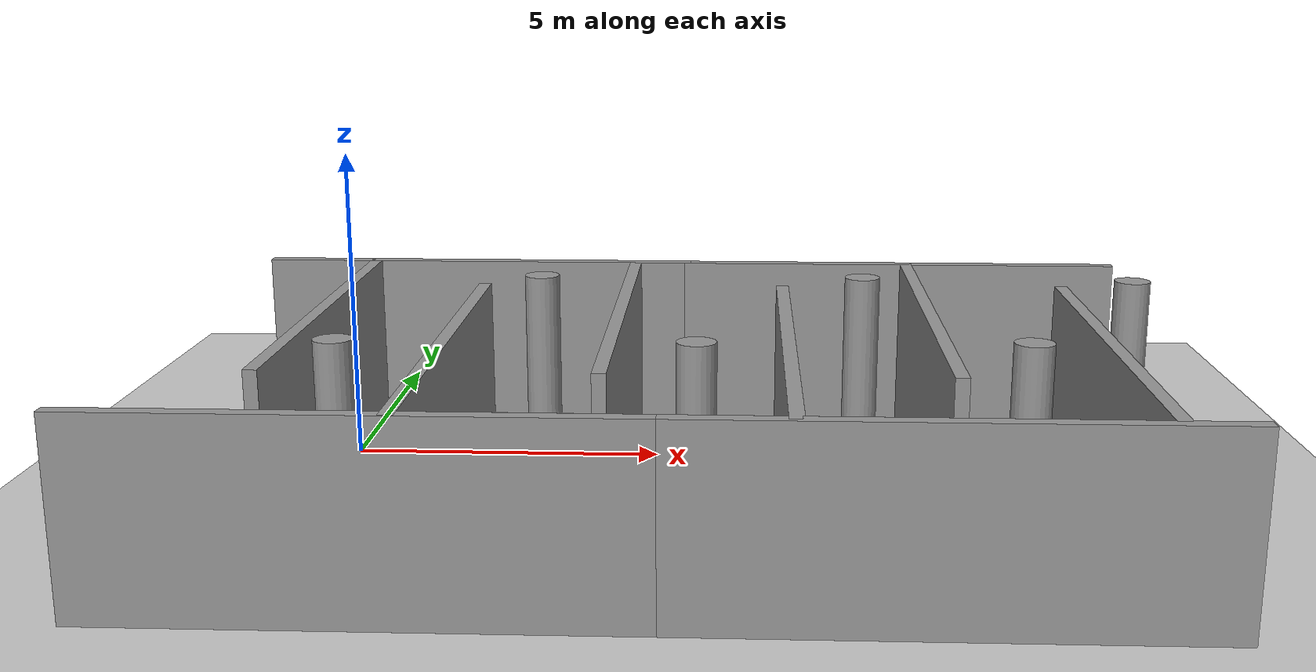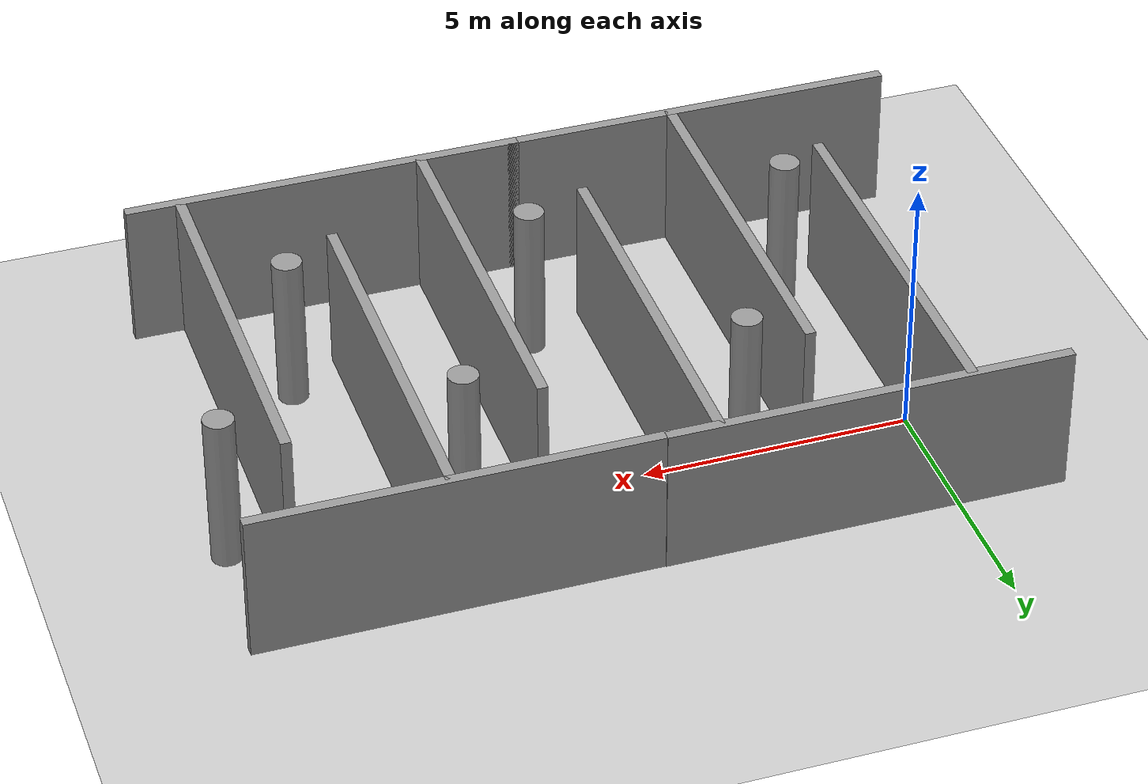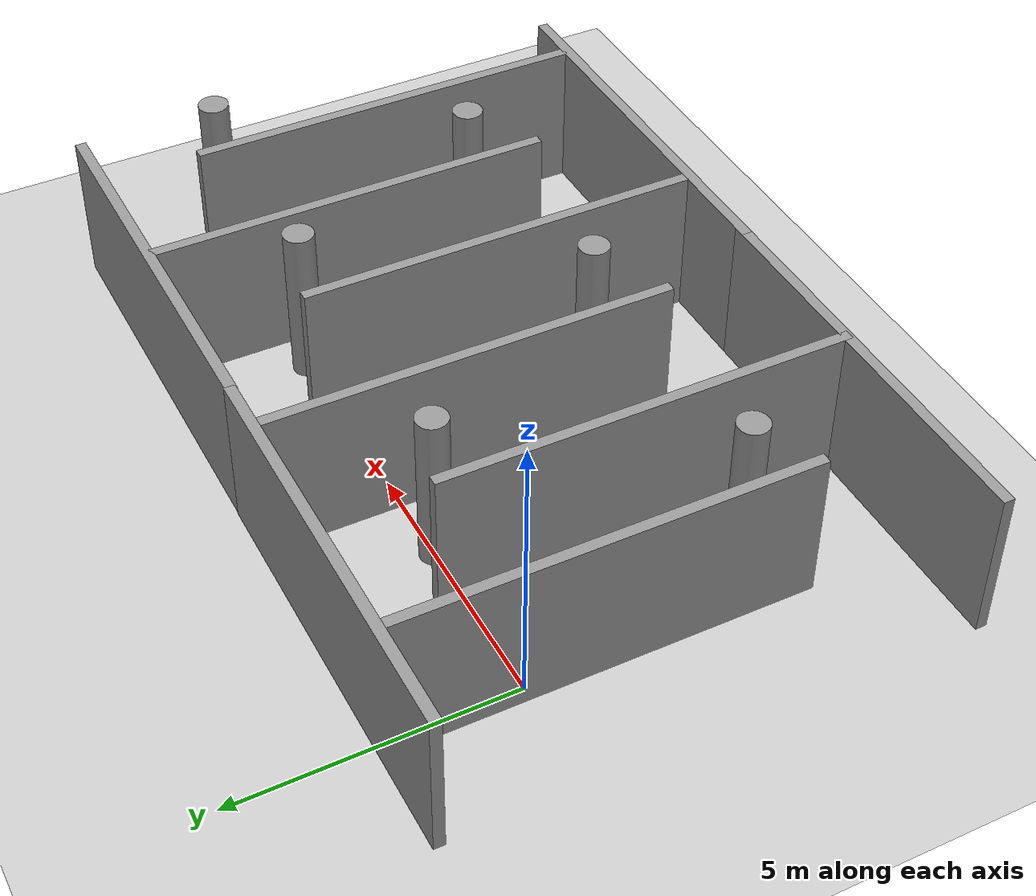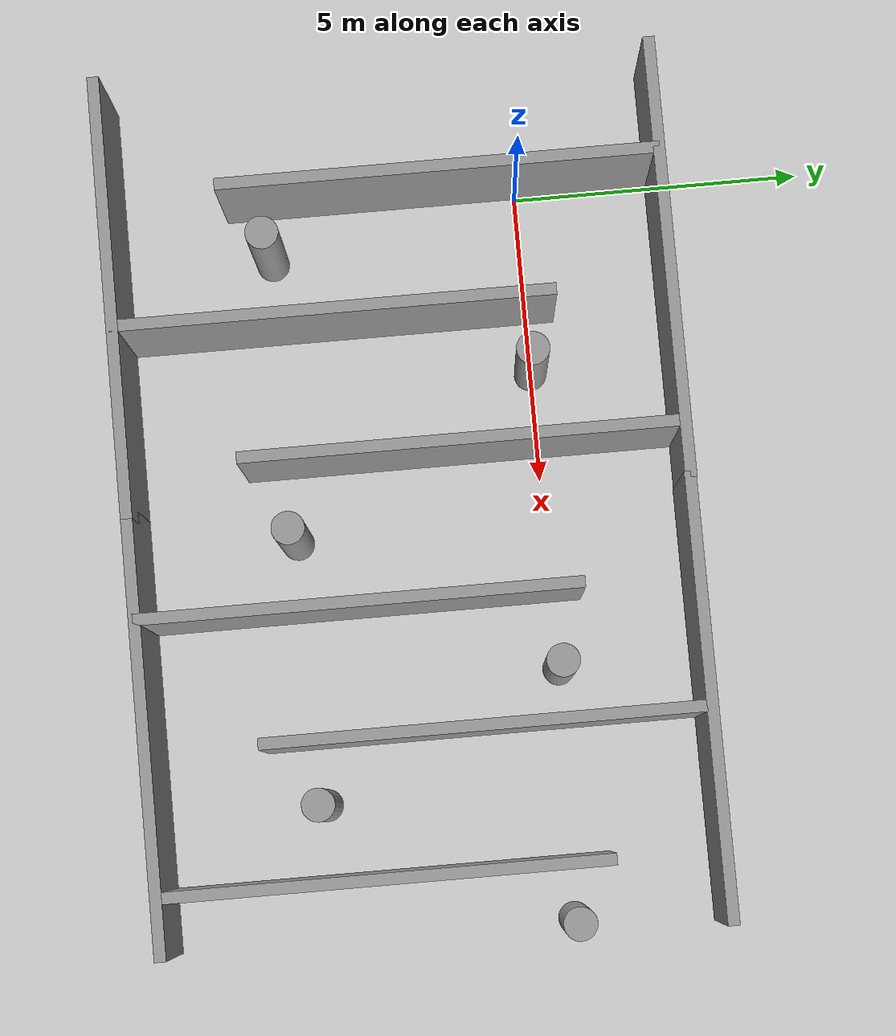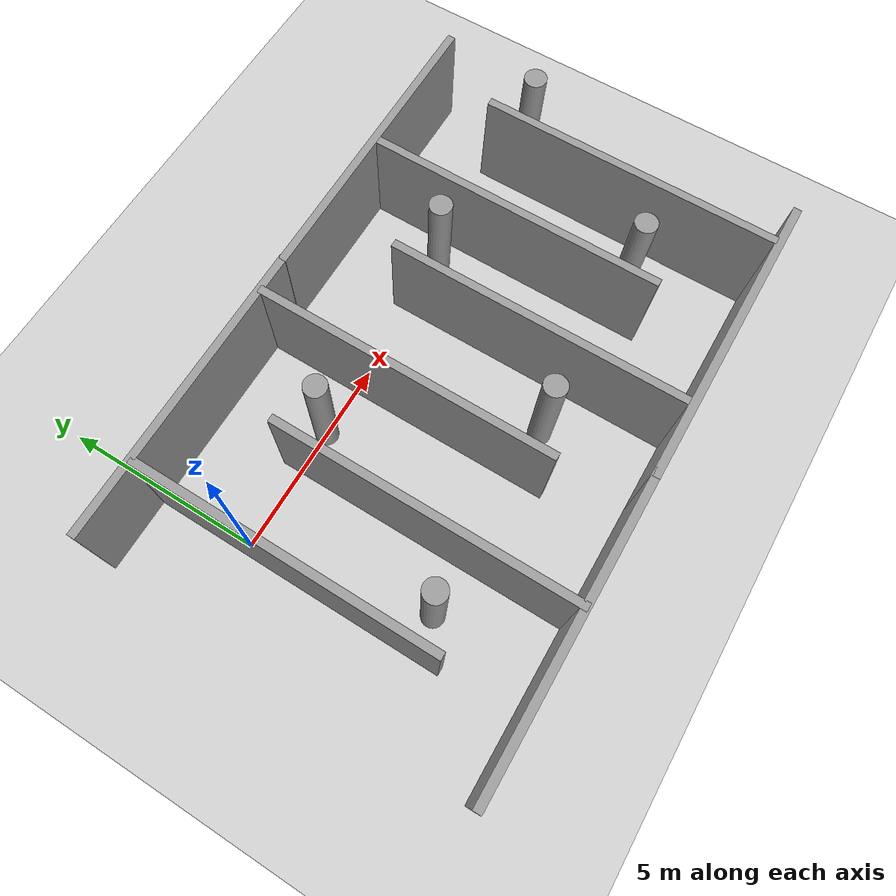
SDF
<sdf version="1.6">
 <world name="default">
  <plugin name="disable_physics" filename="libdisable_physics.so"/>
  <light name="sun" type="directional">
   <cast_shadows>0</cast_shadows>
   <pose>0 0 10 0 -0 0</pose>
   <diffuse>0.8 0.8 0.8 1</diffuse>
   <specular>0.2 0.2 0.2 1</specular>
   <attenuation>
    <range>1000</range>
    <constant>0.9</constant>
    <linear>0.01</linear>
    <quadratic>0.001</quadratic>
   </attenuation>
   <direction>-0.5 0.1 -0.9</direction>
  </light>
  <model name="ground_plane">
   <static>1</static>
   <link name="link">
    <collision name="collision">
     <geometry><plane><normal>0 0 1</normal><size>200 200</size></plane></geometry>
     <surface><friction><ode><mu>100</mu><mu2>50</mu2></ode></friction></surface>
    </collision>
    <visual name="visual">
     <cast_shadows>0</cast_shadows>
     <geometry><plane><normal>0 0 1</normal><size>200 200</size></plane></geometry>
     <material>
      <script><uri>file://media/materials/scripts/gazebo.material</uri><name>Gazebo/Grey</name></script>
     </material>
    </visual>
   </link>
  </model>
  <physics name="default_physics" default="0" type="ode">
   <max_step_size>0.001</max_step_size>
   <real_time_factor>1</real_time_factor>
   <real_time_update_rate>1000</real_time_update_rate>
  </physics>
  <scene><ambient>0.4 0.4 0.4 1</ambient><background>0.7 0.7 0.7 1</background><shadows>0</shadows></scene>
  <spherical_coordinates>
   <surface_model>EARTH_WGS84</surface_model>
   <latitude_deg>0</latitude_deg>
   <longitude_deg>0</longitude_deg>
   <elevation>0</elevation>
   <heading_deg>0</heading_deg>
  </spherical_coordinates>
  <gravity>0 0 -9.8</gravity>
  <magnetic_field>6e-06 2.3e-05 -4.2e-05</magnetic_field>
  <atmosphere type="adiabatic"/>
  <audio><device>default</device></audio>
  <model name="grey_wall">
   <static>1</static>
   <link name="link">
    <pose>0 0 1.4 0 -0 0</pose>
    <collision name="collision"><geometry><box><size>7.5 0.2 2.8</size></box></geometry></collision>
    <visual name="visual">
     <cast_shadows>0</cast_shadows>
     <geometry><box><size>7.5 0.2 2.8</size></box></geometry>
     <material>
      <script>
       <uri>model://grey_wall/materials/scripts</uri>
       <uri>model://grey_wall/materials/textures</uri>
       <name>vrc/grey_wall</name>
      </script>
     </material>
    </visual>
   </link>
   <pose>1.72512 2.41837 0 0 -0 0</pose>
  </model>
  <model name="grey_wall_clone">
   <static>1</static>
   <link name="link">
    <pose>0 0 1.4 0 -0 0</pose>
    <collision name="collision"><geometry><box><size>7.5 0.2 2.8</size></box></geometry></collision>
    <visual name="visual">
     <cast_shadows>0</cast_shadows>
     <geometry><box><size>7.5 0.2 2.8</size></box></geometry>
     <material>
      <script>
       <uri>model://grey_wall/materials/scripts</uri>
       <uri>model://grey_wall/materials/textures</uri>
       <name>vrc/grey_wall</name>
      </script>
     </material>
    </visual>
   </link>
   <pose>9.12125 2.40683 0 0 -0 0</pose>
  </model>
  <model name="grey_wall_clone_clone">
   <static>1</static>
   <link name="link">
    <pose>0 0 1.4 0 -0 0</pose>
    <collision name="collision"><geometry><box><size>7.5 0.2 2.8</size></box></geometry></collision>
    <visual name="visual">
     <cast_shadows>0</cast_shadows>
     <geometry><box><size>7.5 0.2 2.8</size></box></geometry>
     <material>
      <script>
       <uri>model://grey_wall/materials/scripts</uri>
       <uri>model://grey_wall/materials/textures</uri>
       <name>vrc/grey_wall</name>
      </script>
     </material>
    </visual>
   </link>
   <pose>-0.137812 -1.32378 0 0 0 -1.57368</pose>
  </model>
  <model name="grey_wall_clone_0">
   <static>1</static>
   <link name="link">
    <pose>0 0 1.4 0 -0 0</pose>
    <collision name="collision"><geometry><box><size>7.5 0.2 2.8</size></box></geometry></collision>
    <visual name="visual">
     <cast_shadows>0</cast_shadows>
     <geometry><box><size>7.5 0.2 2.8</size></box></geometry>
     <material>
      <script>
       <uri>model://grey_wall/materials/scripts</uri>
       <uri>model://grey_wall/materials/textures</uri>
       <name>vrc/grey_wall</name>
      </script>
     </material>
    </visual>
   </link>
   <pose>1.59238 -6.95967 0 0 -0 0</pose>
  </model>
  <model name="grey_wall_clone_1">
   <static>1</static>
   <link name="link">
    <pose>0 0 1.4 0 -0 0</pose>
    <collision name="collision"><geometry><box><size>7.5 0.2 2.8</size></box></geometry></collision>
    <visual name="visual">
     <cast_shadows>0</cast_shadows>
     <geometry><box><size>7.5 0.2 2.8</size></box></geometry>
     <material>
      <script>
       <uri>model://grey_wall/materials/scripts</uri>
       <uri>model://grey_wall/materials/textures</uri>
       <name>vrc/grey_wall</name>
      </script>
     </material>
    </visual>
   </link>
   <pose>8.8831 -6.95967 0 0 -0 0</pose>
  </model>
  <model name="grey_wall_clone_clone_clone">
   <static>1</static>
   <link name="link">
    <pose>0 0 1.4 0 -0 0</pose>
    <collision name="collision"><geometry><box><size>7.5 0.2 2.8</size></box></geometry></collision>
    <visual name="visual">
     <cast_shadows>0</cast_shadows>
     <geometry><box><size>7.5 0.2 2.8</size></box></geometry>
     <material>
      <script>
       <uri>model://grey_wall/materials/scripts</uri>
       <uri>model://grey_wall/materials/textures</uri>
       <name>vrc/grey_wall</name>
      </script>
     </material>
    </visual>
   </link>
   <pose>2.10958 -3.26491 0 0 0 -1.57368</pose>
  </model>
  <model name="grey_wall_clone_clone_clone_0">
   <static>1</static>
   <link name="link">
    <pose>0 0 1.4 0 -0 0</pose>
    <collision name="collision"><geometry><box><size>7.5 0.2 2.8</size></box></geometry></collision>
    <visual name="visual">
     <cast_shadows>0</cast_shadows>
     <geometry><box><size>7.5 0.2 2.8</size></box></geometry>
     <material>
      <script>
       <uri>model://grey_wall/materials/scripts</uri>
       <uri>model://grey_wall/materials/textures</uri>
       <name>vrc/grey_wall</name>
      </script>
     </material>
    </visual>
   </link>
   <pose>4.49858 -1.31903 0 0 0 -1.57368</pose>
  </model>
  <model name="grey_wall_clone_clone_clone_1">
   <static>1</static>
   <link name="link">
    <pose>0 0 1.4 0 -0 0</pose>
    <collision name="collision"><geometry><box><size>7.5 0.2 2.8</size></box></geometry></collision>
    <visual name="visual">
     <cast_shadows>0</cast_shadows>
     <geometry><box><size>7.5 0.2 2.8</size></box></geometry>
     <material>
      <script>
       <uri>model://grey_wall/materials/scripts</uri>
       <uri>model://grey_wall/materials/textures</uri>
       <name>vrc/grey_wall</name>
      </script>
     </material>
    </visual>
   </link>
   <pose>7.03594 -3.24025 0 0 0 -1.57368</pose>
  </model>
  <model name="grey_wall_clone_clone_clone_2">
   <static>1</static>
   <link name="link">
    <pose>0 0 1.4 0 -0 0</pose>
    <collision name="collision"><geometry><box><size>7.5 0.2 2.8</size></box></geometry></collision>
    <visual name="visual">
     <cast_shadows>0</cast_shadows>
     <geometry><box><size>7.5 0.2 2.8</size></box></geometry>
     <material>
      <script>
       <uri>model://grey_wall/materials/scripts</uri>
       <uri>model://grey_wall/materials/textures</uri>
       <name>vrc/grey_wall</name>
      </script>
     </material>
    </visual>
   </link>
   <pose>9.25262 -1.34357 0 0 0 -1.57368</pose>
  </model>
  <model name="grey_wall_clone_clone_clone_3">
   <static>1</static>
   <link name="link">
    <pose>0 0 1.4 0 -0 0</pose>
    <collision name="collision"><geometry><box><size>7.5 0.2 2.8</size></box></geometry></collision>
    <visual name="visual">
     <cast_shadows>0</cast_shadows>
     <geometry><box><size>7.5 0.2 2.8</size></box></geometry>
     <material>
      <script>
       <uri>model://grey_wall/materials/scripts</uri>
       <uri>model://grey_wall/materials/textures</uri>
       <name>vrc/grey_wall</name>
      </script>
     </material>
    </visual>
   </link>
   <pose>11.617 -3.14166 0 0 0 -1.57368</pose>
  </model>
  <model name="unit_cylinder">
   <pose>0.792484 -4.33049 1.55375 0 -0 0</pose>
   <link name="link">
    <inertial>
     <mass>1</mass>
     <inertia><ixx>0.145833</ixx><ixy>0</ixy><ixz>0</ixz><iyy>0.145833</iyy><iyz>0</iyz><izz>0.125</izz></inertia>
    </inertial>
    <collision name="collision">
     <geometry><cylinder><radius>0.280264</radius><length>2.9931</length></cylinder></geometry>
    </collision>
    <visual name="visual">
     <geometry><cylinder><radius>0.280264</radius><length>2.9931</length></cylinder></geometry>
     <material>
      <script><name>Gazebo/Grey</name><uri>file://media/materials/scripts/gazebo.material</uri></script>
     </material>
    </visual>
   </link>
  </model>
  <model name="unit_cylinder_clone">
   <pose>3.13172 -0.002429 1.55375 0 -0 0</pose>
   <link name="link">
    <inertial>
     <mass>1</mass>
     <inertia><ixx>0.145833</ixx><ixy>0</ixy><ixz>0</ixz><iyy>0.145833</iyy><iyz>0</iyz><izz>0.125</izz></inertia>
    </inertial>
    <collision name="collision">
     <geometry><cylinder><radius>0.280264</radius><length>2.9931</length></cylinder></geometry>
    </collision>
    <visual name="visual">
     <geometry><cylinder><radius>0.280264</radius><length>2.9931</length></cylinder></geometry>
     <material>
      <script><name>Gazebo/Grey</name><uri>file://media/materials/scripts/gazebo.material</uri></script>
     </material>
    </visual>
   </link>
  </model>
  <model name="unit_cylinder_clone_0">
   <pose>5.75566 -4.29684 1.55375 0 -0 0</pose>
   <link name="link">
    <inertial>
     <mass>1</mass>
     <inertia><ixx>0.145833</ixx><ixy>0</ixy><ixz>0</ixz><iyy>0.145833</iyy><iyz>0</iyz><izz>0.125</izz></inertia>
    </inertial>
    <collision name="collision">
     <geometry><cylinder><radius>0.280264</radius><length>2.9931</length></cylinder></geometry>
    </collision>
    <visual name="visual">
     <geometry><cylinder><radius>0.280264</radius><length>2.9931</length></cylinder></geometry>
     <material>
      <script><name>Gazebo/Grey</name><uri>file://media/materials/scripts/gazebo.material</uri></script>
     </material>
    </visual>
   </link>
  </model>
  <model name="unit_cylinder_clone_1">
   <pose>8.32301 0.026566 1.55375 0 -0 0</pose>
   <link name="link">
    <inertial>
     <mass>1</mass>
     <inertia><ixx>0.145833</ixx><ixy>0</ixy><ixz>0</ixz><iyy>0.145833</iyy><iyz>0</iyz><izz>0.125</izz></inertia>
    </inertial>
    <collision name="collision">
     <geometry><cylinder><radius>0.280264</radius><length>2.9931</length></cylinder></geometry>
    </collision>
    <visual name="visual">
     <geometry><cylinder><radius>0.280264</radius><length>2.9931</length></cylinder></geometry>
     <material>
      <script><name>Gazebo/Grey</name><uri>file://media/materials/scripts/gazebo.material</uri></script>
     </material>
    </visual>
   </link>
  </model>
  <model name="unit_cylinder_clone_2">
   <pose>10.3216 -4.17333 1.55375 0 -0 0</pose>
   <link name="link">
    <inertial>
     <mass>1</mass>
     <inertia><ixx>0.145833</ixx><ixy>0</ixy><ixz>0</ixz><iyy>0.145833</iyy><iyz>0</iyz><izz>0.125</izz></inertia>
    </inertial>
    <collision name="collision">
     <geometry><cylinder><radius>0.280264</radius><length>2.9931</length></cylinder></geometry>
    </collision>
    <visual name="visual">
     <geometry><cylinder><radius>0.280264</radius><length>2.9931</length></cylinder></geometry>
     <material>
      <script><name>Gazebo/Grey</name><uri>file://media/materials/scripts/gazebo.material</uri></script>
     </material>
    </visual>
   </link>
  </model>
  <model name="unit_cylinder_clone_3">
   <pose>12.613 -0.088997 1.55375 0 -0 0</pose>
   <link name="link">
    <inertial>
     <mass>1</mass>
     <inertia><ixx>0.145833</ixx><ixy>0</ixy><ixz>0</ixz><iyy>0.145833</iyy><iyz>0</iyz><izz>0.125</izz></inertia>
    </inertial>
    <collision name="collision">
     <geometry><cylinder><radius>0.280264</radius><length>2.9931</length></cylinder></geometry>
    </collision>
    <visual name="visual">
     <geometry><cylinder><radius>0.280264</radius><length>2.9931</length></cylinder></geometry>
     <material>
      <script><name>Gazebo/Grey</name><uri>file://media/materials/scripts/gazebo.material</uri></script>
     </material>
    </visual>
   </link>
  </model>
 </world>
</sdf>
